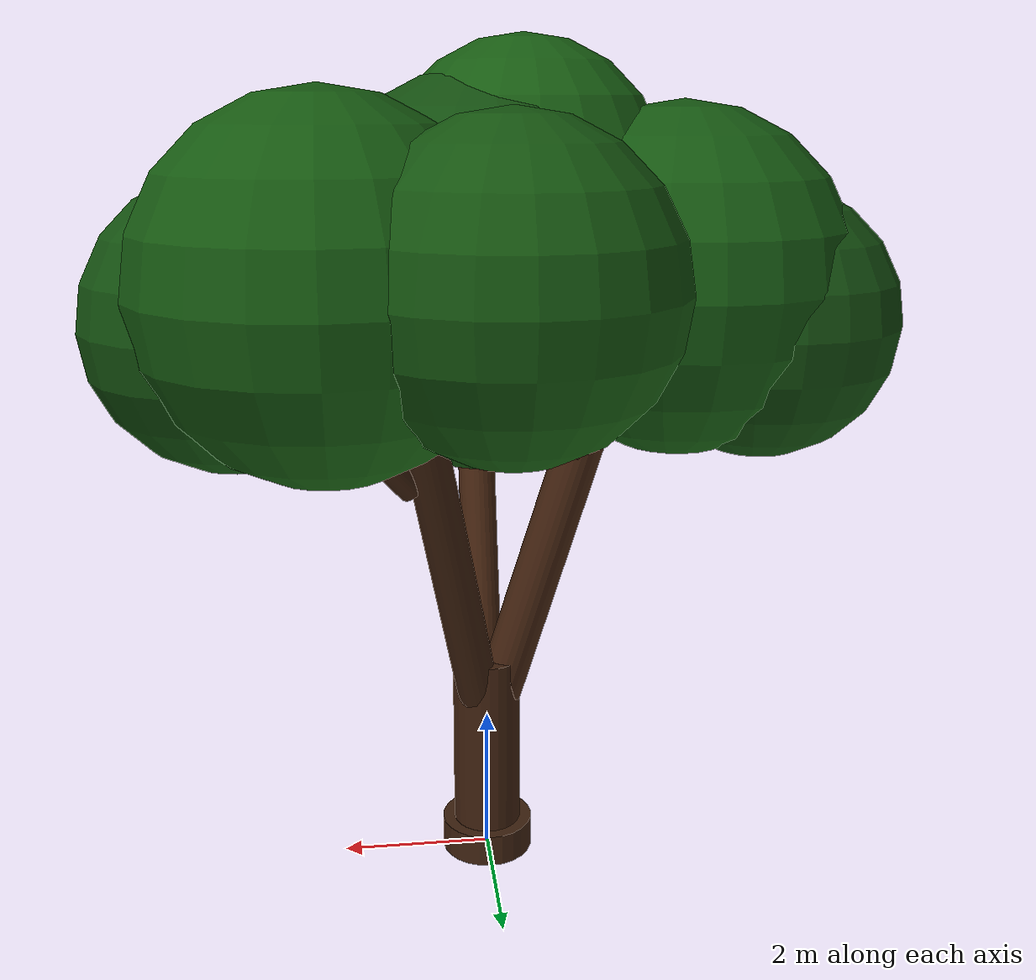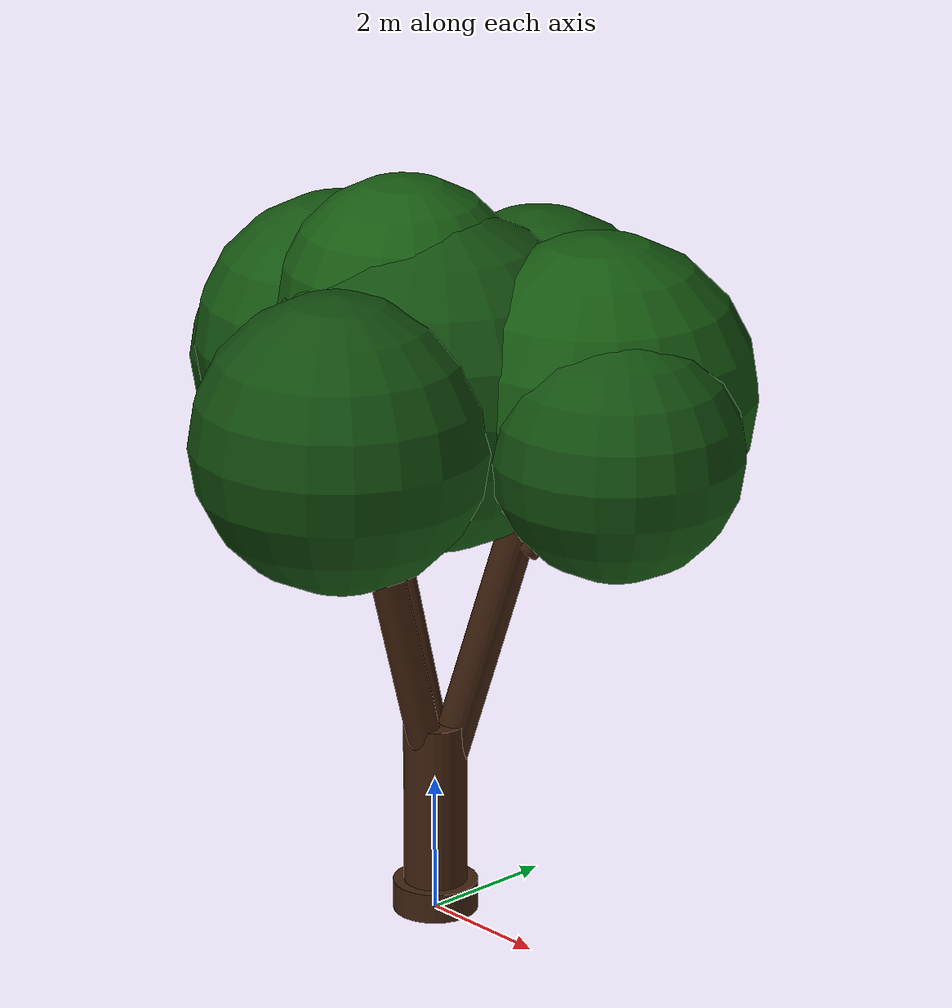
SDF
<?xml version="1.0"?>
<sdf version="1.9">
  <model name="surf_multi_trunk_tree">
    <static>true</static>
    <link name="tree">
      <collision name="bole_collision">
        <pose>0 0 1.45 0 0 0</pose>
        <geometry>
          <cylinder>
            <radius>0.46</radius>
            <length>2.9</length>
          </cylinder>
        </geometry>
      </collision>
      <collision name="west_leader_collision">
        <pose>-0.66 0.05 4.02 0 -0.30 0</pose>
        <geometry>
          <cylinder>
            <radius>0.31</radius>
            <length>4.65</length>
          </cylinder>
        </geometry>
      </collision>
      <collision name="northeast_leader_collision">
        <pose>0.43 0.50 4.02 0 0.28 0.85</pose>
        <geometry>
          <cylinder>
            <radius>0.28</radius>
            <length>4.55</length>
          </cylinder>
        </geometry>
      </collision>
      <collision name="south_leader_collision">
        <pose>0.03 -0.55 3.92 0 0.26 -1.55</pose>
        <geometry>
          <cylinder>
            <radius>0.25</radius>
            <length>4.45</length>
          </cylinder>
        </geometry>
      </collision>

      <visual name="root_flare_visual">
        <pose>0 0 0.22 0 0 0</pose>
        <geometry>
          <cylinder>
            <radius>0.62</radius>
            <length>0.44</length>
          </cylinder>
        </geometry>
        <material>
          <ambient>0.19 0.105 0.055 1</ambient>
          <diffuse>0.25 0.135 0.065 1</diffuse>
          <specular>0.025 0.02 0.015 1</specular>
        </material>
      </visual>
      <visual name="bole_visual">
        <pose>0 0 1.45 0 0 0</pose>
        <geometry>
          <cylinder>
            <radius>0.46</radius>
            <length>2.9</length>
          </cylinder>
        </geometry>
        <material>
          <ambient>0.17 0.09 0.045 1</ambient>
          <diffuse>0.25 0.13 0.06 1</diffuse>
          <specular>0.02 0.015 0.01 1</specular>
        </material>
      </visual>
      <visual name="west_leader_visual">
        <pose>-0.66 0.05 4.02 0 -0.30 0</pose>
        <geometry>
          <cylinder>
            <radius>0.31</radius>
            <length>4.65</length>
          </cylinder>
        </geometry>
        <material>
          <ambient>0.18 0.095 0.045 1</ambient>
          <diffuse>0.27 0.14 0.065 1</diffuse>
          <specular>0.02 0.015 0.01 1</specular>
        </material>
      </visual>
      <visual name="northeast_leader_visual">
        <pose>0.43 0.50 4.02 0 0.28 0.85</pose>
        <geometry>
          <cylinder>
            <radius>0.28</radius>
            <length>4.55</length>
          </cylinder>
        </geometry>
        <material>
          <ambient>0.16 0.085 0.04 1</ambient>
          <diffuse>0.24 0.125 0.055 1</diffuse>
          <specular>0.02 0.015 0.01 1</specular>
        </material>
      </visual>
      <visual name="south_leader_visual">
        <pose>0.03 -0.55 3.92 0 0.26 -1.55</pose>
        <geometry>
          <cylinder>
            <radius>0.25</radius>
            <length>4.45</length>
          </cylinder>
        </geometry>
        <material>
          <ambient>0.19 0.10 0.048 1</ambient>
          <diffuse>0.28 0.145 0.065 1</diffuse>
          <specular>0.02 0.015 0.01 1</specular>
        </material>
      </visual>

      <!-- Upper branches are visual detail and remain above robot height. -->
      <visual name="west_branch_visual">
        <pose>-2.10 0.24 6.70 0 -0.88 0</pose>
        <geometry>
          <cylinder>
            <radius>0.18</radius>
            <length>2.70</length>
          </cylinder>
        </geometry>
        <material>
          <ambient>0.17 0.09 0.045 1</ambient>
          <diffuse>0.25 0.13 0.06 1</diffuse>
        </material>
      </visual>
      <visual name="northeast_branch_visual">
        <pose>1.76 1.45 6.57 0 0.76 0.65</pose>
        <geometry>
          <cylinder>
            <radius>0.17</radius>
            <length>2.75</length>
          </cylinder>
        </geometry>
        <material>
          <ambient>0.16 0.085 0.04 1</ambient>
          <diffuse>0.24 0.125 0.055 1</diffuse>
        </material>
      </visual>
      <visual name="south_branch_visual">
        <pose>0.35 -2.20 6.47 0 0.75 -1.30</pose>
        <geometry>
          <cylinder>
            <radius>0.16</radius>
            <length>2.70</length>
          </cylinder>
        </geometry>
        <material>
          <ambient>0.18 0.095 0.045 1</ambient>
          <diffuse>0.27 0.14 0.065 1</diffuse>
        </material>
      </visual>

      <!-- Overlapping spheres form an irregular crown roughly 9.9 m wide. -->
      <visual name="canopy_core_visual">
        <pose>0 0 8.10 0 0 0</pose>
        <geometry><sphere><radius>2.45</radius></sphere></geometry>
        <material>
          <ambient>0.055 0.21 0.045 1</ambient>
          <diffuse>0.075 0.31 0.06 1</diffuse>
          <specular>0.015 0.025 0.012 1</specular>
        </material>
      </visual>
      <visual name="canopy_west_visual">
        <pose>-2.35 0.38 8.02 0 0 0</pose>
        <geometry><sphere><radius>2.15</radius></sphere></geometry>
        <material>
          <ambient>0.06 0.235 0.05 1</ambient>
          <diffuse>0.08 0.34 0.065 1</diffuse>
          <specular>0.015 0.025 0.012 1</specular>
        </material>
      </visual>
      <visual name="canopy_far_west_visual">
        <pose>-3.38 0.55 7.53 0 0 0</pose>
        <geometry><sphere><radius>1.70</radius></sphere></geometry>
        <material>
          <ambient>0.05 0.19 0.04 1</ambient>
          <diffuse>0.07 0.29 0.055 1</diffuse>
          <specular>0.012 0.02 0.01 1</specular>
        </material>
      </visual>
      <visual name="canopy_northeast_visual">
        <pose>1.95 1.30 8.08 0 0 0</pose>
        <geometry><sphere><radius>2.25</radius></sphere></geometry>
        <material>
          <ambient>0.065 0.245 0.05 1</ambient>
          <diffuse>0.085 0.35 0.065 1</diffuse>
          <specular>0.015 0.025 0.012 1</specular>
        </material>
      </visual>
      <visual name="canopy_east_visual">
        <pose>3.05 0.62 7.62 0 0 0</pose>
        <geometry><sphere><radius>1.78</radius></sphere></geometry>
        <material>
          <ambient>0.055 0.215 0.045 1</ambient>
          <diffuse>0.075 0.315 0.06 1</diffuse>
          <specular>0.015 0.025 0.012 1</specular>
        </material>
      </visual>
      <visual name="canopy_south_visual">
        <pose>0.48 -2.16 7.78 0 0 0</pose>
        <geometry><sphere><radius>2.10</radius></sphere></geometry>
        <material>
          <ambient>0.05 0.20 0.04 1</ambient>
          <diffuse>0.07 0.30 0.055 1</diffuse>
          <specular>0.012 0.02 0.01 1</specular>
        </material>
      </visual>
      <visual name="canopy_north_visual">
        <pose>-0.10 2.10 8.15 0 0 0</pose>
        <geometry><sphere><radius>1.95</radius></sphere></geometry>
        <material>
          <ambient>0.06 0.225 0.045 1</ambient>
          <diffuse>0.08 0.33 0.06 1</diffuse>
          <specular>0.015 0.025 0.012 1</specular>
        </material>
      </visual>
      <visual name="canopy_crown_visual">
        <pose>-0.48 -0.12 9.15 0 0 0</pose>
        <geometry><sphere><radius>1.78</radius></sphere></geometry>
        <material>
          <ambient>0.065 0.25 0.05 1</ambient>
          <diffuse>0.09 0.36 0.07 1</diffuse>
          <specular>0.015 0.025 0.012 1</specular>
        </material>
      </visual>
    </link>
  </model>
</sdf>
